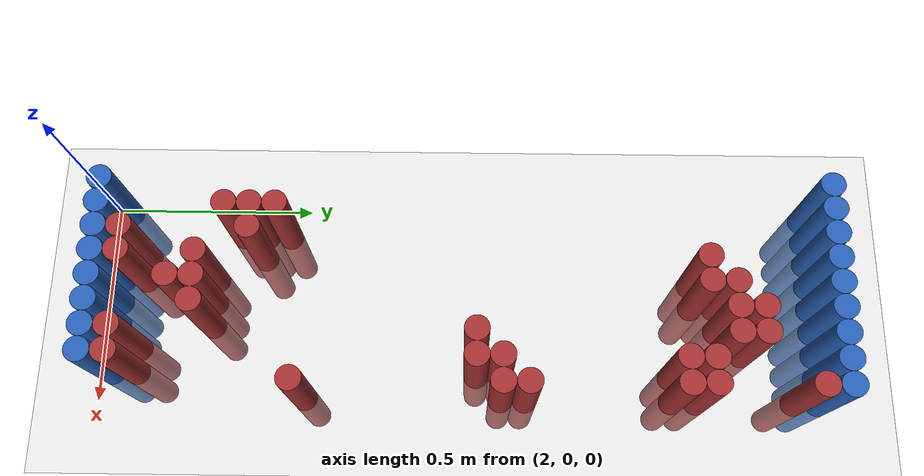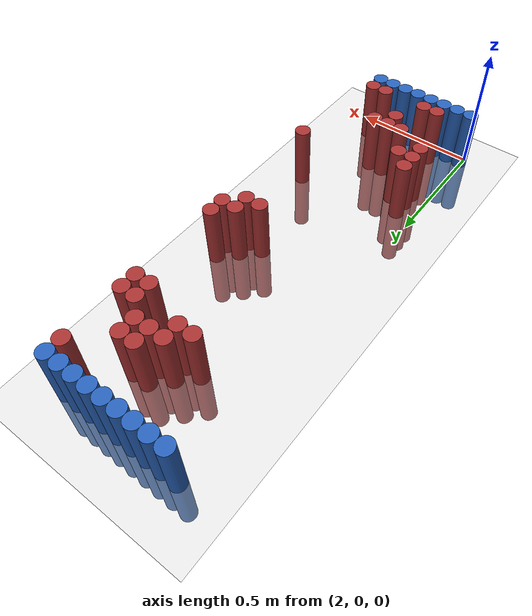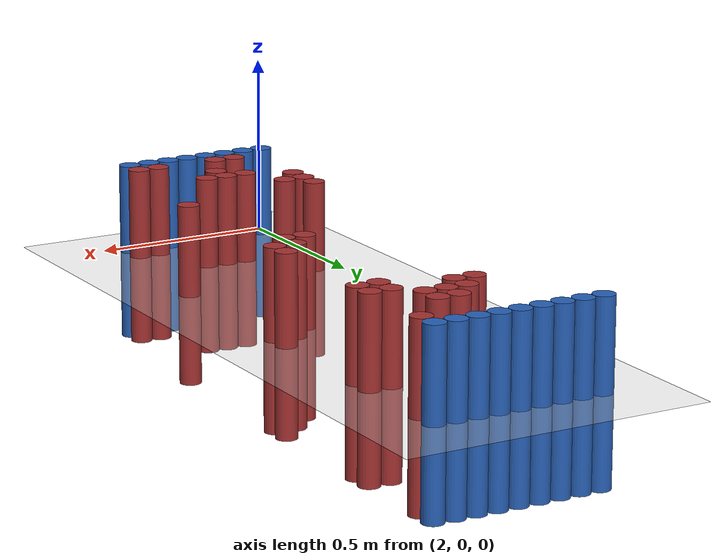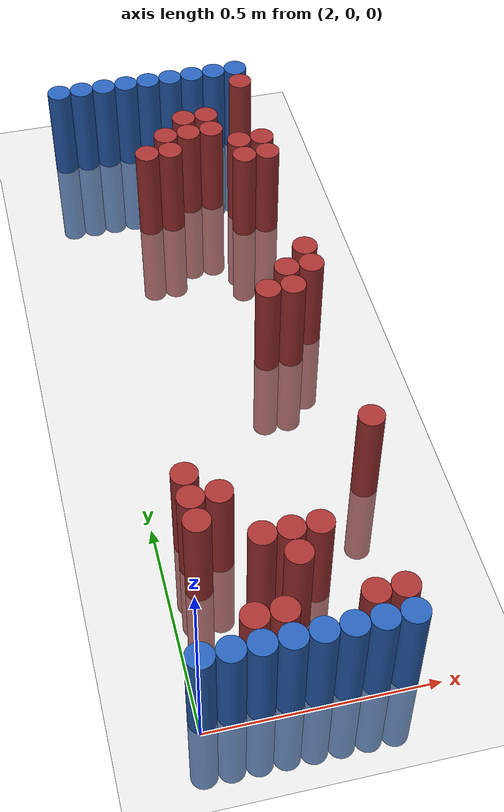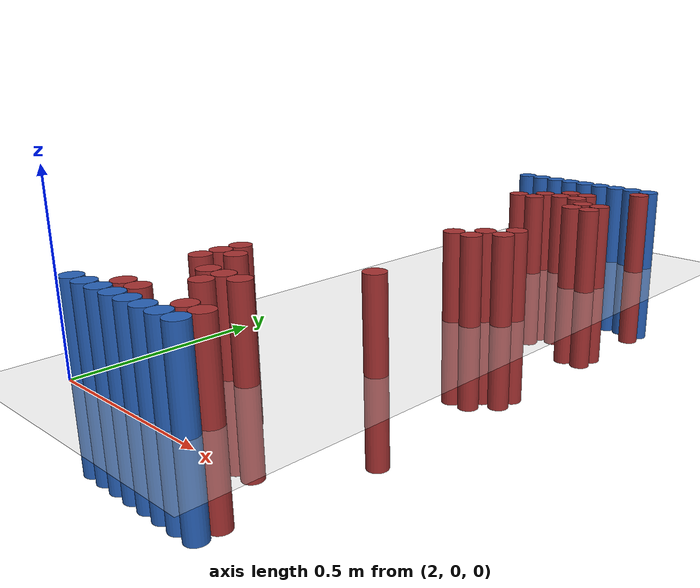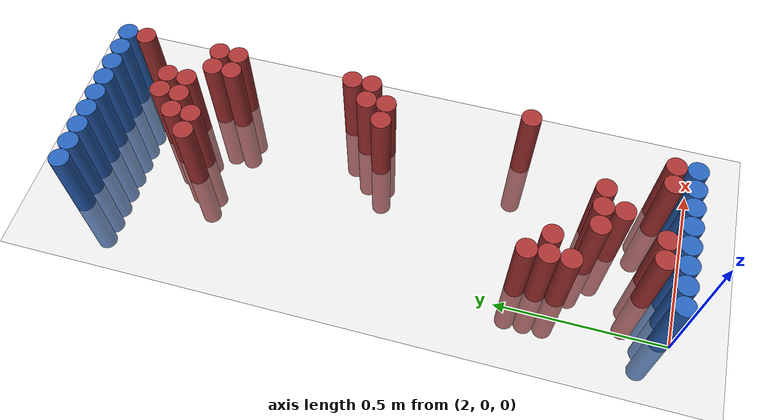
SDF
<sdf version="1.6">
 <world name="default">
  <model name="ground_plane">
   <static>1</static>
   <link name="link">
    <collision name="collision">
     <geometry><plane><normal>0 0 1</normal><size>100 100</size></plane></geometry>
     <surface><friction><ode><mu>100</mu><mu2>50</mu2></ode></friction></surface>
    </collision>
    <visual name="visual">
     <cast_shadows>0</cast_shadows>
     <geometry><plane><normal>0 0 1</normal><size>100 100</size></plane></geometry>
     <material>
      <script><uri>file://media/materials/scripts/gazebo.material</uri><name>Gazebo/Grey</name></script>
     </material>
    </visual>
   </link>
  </model>
  <model name="unit_cylinder_93">
   <static>1</static>
   <pose>2.010000 0.030000 0.000000 0.000000 0.000000 0.000000</pose>
   <link name="link">
    <inertial>
     <mass>1</mass>
     <inertia><ixx>0.145833</ixx><ixy>0</ixy><ixz>0</ixz><iyy>0.145833</iyy><iyz>0</iyz><izz>0.125</izz></inertia>
    </inertial>
    <collision name="collision">
     <geometry><cylinder><radius>0.030000</radius><length>0.5</length></cylinder></geometry>
    </collision>
    <visual name="visual">
     <geometry><cylinder><radius>0.030000</radius><length>0.5</length></cylinder></geometry>
     <material>
      <ambient>0.152000 0.379000 0.720000 1</ambient>
      <diffuse>0.152000 0.379000 0.720000 1</diffuse>
     </material>
     <material>
      <script><name>Gazebo/Grey</name><uri>file://media/materials/scripts/gazebo.material</uri></script>
     </material>
    </visual>
   </link>
  </model>
  <model name="unit_cylinder_94">
   <static>1</static>
   <pose>2.010000 1.770000 0.000000 0.000000 0.000000 0.000000</pose>
   <link name="link">
    <inertial>
     <mass>1</mass>
     <inertia><ixx>0.145833</ixx><ixy>0</ixy><ixz>0</ixz><iyy>0.145833</iyy><iyz>0</iyz><izz>0.125</izz></inertia>
    </inertial>
    <collision name="collision">
     <geometry><cylinder><radius>0.030000</radius><length>0.5</length></cylinder></geometry>
    </collision>
    <visual name="visual">
     <geometry><cylinder><radius>0.030000</radius><length>0.5</length></cylinder></geometry>
     <material>
      <ambient>0.152000 0.379000 0.720000 1</ambient>
      <diffuse>0.152000 0.379000 0.720000 1</diffuse>
     </material>
     <material>
      <script><name>Gazebo/Grey</name><uri>file://media/materials/scripts/gazebo.material</uri></script>
     </material>
    </visual>
   </link>
  </model>
  <model name="unit_cylinder_95">
   <static>1</static>
   <pose>2.070000 1.770000 0.000000 0.000000 0.000000 0.000000</pose>
   <link name="link">
    <inertial>
     <mass>1</mass>
     <inertia><ixx>0.145833</ixx><ixy>0</ixy><ixz>0</ixz><iyy>0.145833</iyy><iyz>0</iyz><izz>0.125</izz></inertia>
    </inertial>
    <collision name="collision">
     <geometry><cylinder><radius>0.030000</radius><length>0.5</length></cylinder></geometry>
    </collision>
    <visual name="visual">
     <geometry><cylinder><radius>0.030000</radius><length>0.5</length></cylinder></geometry>
     <material>
      <ambient>0.152000 0.379000 0.720000 1</ambient>
      <diffuse>0.152000 0.379000 0.720000 1</diffuse>
     </material>
     <material>
      <script><name>Gazebo/Grey</name><uri>file://media/materials/scripts/gazebo.material</uri></script>
     </material>
    </visual>
   </link>
  </model>
  <model name="unit_cylinder_96">
   <static>1</static>
   <pose>2.130000 1.770000 0.000000 0.000000 0.000000 0.000000</pose>
   <link name="link">
    <inertial>
     <mass>1</mass>
     <inertia><ixx>0.145833</ixx><ixy>0</ixy><ixz>0</ixz><iyy>0.145833</iyy><iyz>0</iyz><izz>0.125</izz></inertia>
    </inertial>
    <collision name="collision">
     <geometry><cylinder><radius>0.030000</radius><length>0.5</length></cylinder></geometry>
    </collision>
    <visual name="visual">
     <geometry><cylinder><radius>0.030000</radius><length>0.5</length></cylinder></geometry>
     <material>
      <ambient>0.152000 0.379000 0.720000 1</ambient>
      <diffuse>0.152000 0.379000 0.720000 1</diffuse>
     </material>
     <material>
      <script><name>Gazebo/Grey</name><uri>file://media/materials/scripts/gazebo.material</uri></script>
     </material>
    </visual>
   </link>
  </model>
  <model name="unit_cylinder_97">
   <static>1</static>
   <pose>2.190000 1.770000 0.000000 0.000000 0.000000 0.000000</pose>
   <link name="link">
    <inertial>
     <mass>1</mass>
     <inertia><ixx>0.145833</ixx><ixy>0</ixy><ixz>0</ixz><iyy>0.145833</iyy><iyz>0</iyz><izz>0.125</izz></inertia>
    </inertial>
    <collision name="collision">
     <geometry><cylinder><radius>0.030000</radius><length>0.5</length></cylinder></geometry>
    </collision>
    <visual name="visual">
     <geometry><cylinder><radius>0.030000</radius><length>0.5</length></cylinder></geometry>
     <material>
      <ambient>0.152000 0.379000 0.720000 1</ambient>
      <diffuse>0.152000 0.379000 0.720000 1</diffuse>
     </material>
     <material>
      <script><name>Gazebo/Grey</name><uri>file://media/materials/scripts/gazebo.material</uri></script>
     </material>
    </visual>
   </link>
  </model>
  <model name="unit_cylinder_98">
   <static>1</static>
   <pose>2.250000 1.770000 0.000000 0.000000 0.000000 0.000000</pose>
   <link name="link">
    <inertial>
     <mass>1</mass>
     <inertia><ixx>0.145833</ixx><ixy>0</ixy><ixz>0</ixz><iyy>0.145833</iyy><iyz>0</iyz><izz>0.125</izz></inertia>
    </inertial>
    <collision name="collision">
     <geometry><cylinder><radius>0.030000</radius><length>0.5</length></cylinder></geometry>
    </collision>
    <visual name="visual">
     <geometry><cylinder><radius>0.030000</radius><length>0.5</length></cylinder></geometry>
     <material>
      <ambient>0.152000 0.379000 0.720000 1</ambient>
      <diffuse>0.152000 0.379000 0.720000 1</diffuse>
     </material>
     <material>
      <script><name>Gazebo/Grey</name><uri>file://media/materials/scripts/gazebo.material</uri></script>
     </material>
    </visual>
   </link>
  </model>
  <model name="unit_cylinder_99">
   <static>1</static>
   <pose>2.310000 1.770000 0.000000 0.000000 0.000000 0.000000</pose>
   <link name="link">
    <inertial>
     <mass>1</mass>
     <inertia><ixx>0.145833</ixx><ixy>0</ixy><ixz>0</ixz><iyy>0.145833</iyy><iyz>0</iyz><izz>0.125</izz></inertia>
    </inertial>
    <collision name="collision">
     <geometry><cylinder><radius>0.030000</radius><length>0.5</length></cylinder></geometry>
    </collision>
    <visual name="visual">
     <geometry><cylinder><radius>0.030000</radius><length>0.5</length></cylinder></geometry>
     <material>
      <ambient>0.152000 0.379000 0.720000 1</ambient>
      <diffuse>0.152000 0.379000 0.720000 1</diffuse>
     </material>
     <material>
      <script><name>Gazebo/Grey</name><uri>file://media/materials/scripts/gazebo.material</uri></script>
     </material>
    </visual>
   </link>
  </model>
  <model name="unit_cylinder_100">
   <static>1</static>
   <pose>2.370000 1.770000 0.000000 0.000000 0.000000 0.000000</pose>
   <link name="link">
    <inertial>
     <mass>1</mass>
     <inertia><ixx>0.145833</ixx><ixy>0</ixy><ixz>0</ixz><iyy>0.145833</iyy><iyz>0</iyz><izz>0.125</izz></inertia>
    </inertial>
    <collision name="collision">
     <geometry><cylinder><radius>0.030000</radius><length>0.5</length></cylinder></geometry>
    </collision>
    <visual name="visual">
     <geometry><cylinder><radius>0.030000</radius><length>0.5</length></cylinder></geometry>
     <material>
      <ambient>0.152000 0.379000 0.720000 1</ambient>
      <diffuse>0.152000 0.379000 0.720000 1</diffuse>
     </material>
     <material>
      <script><name>Gazebo/Grey</name><uri>file://media/materials/scripts/gazebo.material</uri></script>
     </material>
    </visual>
   </link>
  </model>
  <model name="unit_cylinder_101">
   <static>1</static>
   <pose>2.430000 1.770000 0.000000 0.000000 0.000000 0.000000</pose>
   <link name="link">
    <inertial>
     <mass>1</mass>
     <inertia><ixx>0.145833</ixx><ixy>0</ixy><ixz>0</ixz><iyy>0.145833</iyy><iyz>0</iyz><izz>0.125</izz></inertia>
    </inertial>
    <collision name="collision">
     <geometry><cylinder><radius>0.030000</radius><length>0.5</length></cylinder></geometry>
    </collision>
    <visual name="visual">
     <geometry><cylinder><radius>0.030000</radius><length>0.5</length></cylinder></geometry>
     <material>
      <ambient>0.152000 0.379000 0.720000 1</ambient>
      <diffuse>0.152000 0.379000 0.720000 1</diffuse>
     </material>
     <material>
      <script><name>Gazebo/Grey</name><uri>file://media/materials/scripts/gazebo.material</uri></script>
     </material>
    </visual>
   </link>
  </model>
  <model name="unit_cylinder_102">
   <static>1</static>
   <pose>2.490000 1.770000 0.000000 0.000000 0.000000 0.000000</pose>
   <link name="link">
    <inertial>
     <mass>1</mass>
     <inertia><ixx>0.145833</ixx><ixy>0</ixy><ixz>0</ixz><iyy>0.145833</iyy><iyz>0</iyz><izz>0.125</izz></inertia>
    </inertial>
    <collision name="collision">
     <geometry><cylinder><radius>0.030000</radius><length>0.5</length></cylinder></geometry>
    </collision>
    <visual name="visual">
     <geometry><cylinder><radius>0.030000</radius><length>0.5</length></cylinder></geometry>
     <material>
      <ambient>0.152000 0.379000 0.720000 1</ambient>
      <diffuse>0.152000 0.379000 0.720000 1</diffuse>
     </material>
     <material>
      <script><name>Gazebo/Grey</name><uri>file://media/materials/scripts/gazebo.material</uri></script>
     </material>
    </visual>
   </link>
  </model>
  <model name="unit_cylinder_125">
   <static>1</static>
   <pose>2.490000 1.710000 0.000000 0.000000 0.000000 0.000000</pose>
   <link name="link">
    <inertial>
     <mass>1</mass>
     <inertia><ixx>0.145833</ixx><ixy>0</ixy><ixz>0</ixz><iyy>0.145833</iyy><iyz>0</iyz><izz>0.125</izz></inertia>
    </inertial>
    <collision name="collision">
     <geometry><cylinder><radius>0.030000</radius><length>0.5</length></cylinder></geometry>
    </collision>
    <visual name="visual">
     <geometry><cylinder><radius>0.030000</radius><length>0.5</length></cylinder></geometry>
     <material>
      <ambient>0.648000 0.192000 0.192000 1</ambient>
      <diffuse>0.648000 0.192000 0.192000 1</diffuse>
     </material>
     <material>
      <script><name>Gazebo/Grey</name><uri>file://media/materials/scripts/gazebo.material</uri></script>
     </material>
    </visual>
   </link>
  </model>
  <model name="unit_cylinder_136">
   <static>1</static>
   <pose>2.310000 1.590000 0.000000 0.000000 0.000000 0.000000</pose>
   <link name="link">
    <inertial>
     <mass>1</mass>
     <inertia><ixx>0.145833</ixx><ixy>0</ixy><ixz>0</ixz><iyy>0.145833</iyy><iyz>0</iyz><izz>0.125</izz></inertia>
    </inertial>
    <collision name="collision">
     <geometry><cylinder><radius>0.030000</radius><length>0.5</length></cylinder></geometry>
    </collision>
    <visual name="visual">
     <geometry><cylinder><radius>0.030000</radius><length>0.5</length></cylinder></geometry>
     <material>
      <ambient>0.648000 0.192000 0.192000 1</ambient>
      <diffuse>0.648000 0.192000 0.192000 1</diffuse>
     </material>
     <material>
      <script><name>Gazebo/Grey</name><uri>file://media/materials/scripts/gazebo.material</uri></script>
     </material>
    </visual>
   </link>
  </model>
  <model name="unit_cylinder_137">
   <static>1</static>
   <pose>2.370000 1.590000 0.000000 0.000000 0.000000 0.000000</pose>
   <link name="link">
    <inertial>
     <mass>1</mass>
     <inertia><ixx>0.145833</ixx><ixy>0</ixy><ixz>0</ixz><iyy>0.145833</iyy><iyz>0</iyz><izz>0.125</izz></inertia>
    </inertial>
    <collision name="collision">
     <geometry><cylinder><radius>0.030000</radius><length>0.5</length></cylinder></geometry>
    </collision>
    <visual name="visual">
     <geometry><cylinder><radius>0.030000</radius><length>0.5</length></cylinder></geometry>
     <material>
      <ambient>0.648000 0.192000 0.192000 1</ambient>
      <diffuse>0.648000 0.192000 0.192000 1</diffuse>
     </material>
     <material>
      <script><name>Gazebo/Grey</name><uri>file://media/materials/scripts/gazebo.material</uri></script>
     </material>
    </visual>
   </link>
  </model>
  <model name="unit_cylinder_138">
   <static>1</static>
   <pose>2.250000 1.530000 0.000000 0.000000 0.000000 0.000000</pose>
   <link name="link">
    <inertial>
     <mass>1</mass>
     <inertia><ixx>0.145833</ixx><ixy>0</ixy><ixz>0</ixz><iyy>0.145833</iyy><iyz>0</iyz><izz>0.125</izz></inertia>
    </inertial>
    <collision name="collision">
     <geometry><cylinder><radius>0.030000</radius><length>0.5</length></cylinder></geometry>
    </collision>
    <visual name="visual">
     <geometry><cylinder><radius>0.030000</radius><length>0.5</length></cylinder></geometry>
     <material>
      <ambient>0.648000 0.192000 0.192000 1</ambient>
      <diffuse>0.648000 0.192000 0.192000 1</diffuse>
     </material>
     <material>
      <script><name>Gazebo/Grey</name><uri>file://media/materials/scripts/gazebo.material</uri></script>
     </material>
    </visual>
   </link>
  </model>
  <model name="unit_cylinder_139">
   <static>1</static>
   <pose>2.310000 1.530000 0.000000 0.000000 0.000000 0.000000</pose>
   <link name="link">
    <inertial>
     <mass>1</mass>
     <inertia><ixx>0.145833</ixx><ixy>0</ixy><ixz>0</ixz><iyy>0.145833</iyy><iyz>0</iyz><izz>0.125</izz></inertia>
    </inertial>
    <collision name="collision">
     <geometry><cylinder><radius>0.030000</radius><length>0.5</length></cylinder></geometry>
    </collision>
    <visual name="visual">
     <geometry><cylinder><radius>0.030000</radius><length>0.5</length></cylinder></geometry>
     <material>
      <ambient>0.648000 0.192000 0.192000 1</ambient>
      <diffuse>0.648000 0.192000 0.192000 1</diffuse>
     </material>
     <material>
      <script><name>Gazebo/Grey</name><uri>file://media/materials/scripts/gazebo.material</uri></script>
     </material>
    </visual>
   </link>
  </model>
  <model name="unit_cylinder_140">
   <static>1</static>
   <pose>2.370000 1.530000 0.000000 0.000000 0.000000 0.000000</pose>
   <link name="link">
    <inertial>
     <mass>1</mass>
     <inertia><ixx>0.145833</ixx><ixy>0</ixy><ixz>0</ixz><iyy>0.145833</iyy><iyz>0</iyz><izz>0.125</izz></inertia>
    </inertial>
    <collision name="collision">
     <geometry><cylinder><radius>0.030000</radius><length>0.5</length></cylinder></geometry>
    </collision>
    <visual name="visual">
     <geometry><cylinder><radius>0.030000</radius><length>0.5</length></cylinder></geometry>
     <material>
      <ambient>0.648000 0.192000 0.192000 1</ambient>
      <diffuse>0.648000 0.192000 0.192000 1</diffuse>
     </material>
     <material>
      <script><name>Gazebo/Grey</name><uri>file://media/materials/scripts/gazebo.material</uri></script>
     </material>
    </visual>
   </link>
  </model>
  <model name="unit_cylinder_144">
   <static>1</static>
   <pose>2.190000 1.470000 0.000000 0.000000 0.000000 0.000000</pose>
   <link name="link">
    <inertial>
     <mass>1</mass>
     <inertia><ixx>0.145833</ixx><ixy>0</ixy><ixz>0</ixz><iyy>0.145833</iyy><iyz>0</iyz><izz>0.125</izz></inertia>
    </inertial>
    <collision name="collision">
     <geometry><cylinder><radius>0.030000</radius><length>0.5</length></cylinder></geometry>
    </collision>
    <visual name="visual">
     <geometry><cylinder><radius>0.030000</radius><length>0.5</length></cylinder></geometry>
     <material>
      <ambient>0.648000 0.192000 0.192000 1</ambient>
      <diffuse>0.648000 0.192000 0.192000 1</diffuse>
     </material>
     <material>
      <script><name>Gazebo/Grey</name><uri>file://media/materials/scripts/gazebo.material</uri></script>
     </material>
    </visual>
   </link>
  </model>
  <model name="unit_cylinder_145">
   <static>1</static>
   <pose>2.250000 1.470000 0.000000 0.000000 0.000000 0.000000</pose>
   <link name="link">
    <inertial>
     <mass>1</mass>
     <inertia><ixx>0.145833</ixx><ixy>0</ixy><ixz>0</ixz><iyy>0.145833</iyy><iyz>0</iyz><izz>0.125</izz></inertia>
    </inertial>
    <collision name="collision">
     <geometry><cylinder><radius>0.030000</radius><length>0.5</length></cylinder></geometry>
    </collision>
    <visual name="visual">
     <geometry><cylinder><radius>0.030000</radius><length>0.5</length></cylinder></geometry>
     <material>
      <ambient>0.648000 0.192000 0.192000 1</ambient>
      <diffuse>0.648000 0.192000 0.192000 1</diffuse>
     </material>
     <material>
      <script><name>Gazebo/Grey</name><uri>file://media/materials/scripts/gazebo.material</uri></script>
     </material>
    </visual>
   </link>
  </model>
  <model name="unit_cylinder_146">
   <static>1</static>
   <pose>2.430000 1.470000 0.000000 0.000000 0.000000 0.000000</pose>
   <link name="link">
    <inertial>
     <mass>1</mass>
     <inertia><ixx>0.145833</ixx><ixy>0</ixy><ixz>0</ixz><iyy>0.145833</iyy><iyz>0</iyz><izz>0.125</izz></inertia>
    </inertial>
    <collision name="collision">
     <geometry><cylinder><radius>0.030000</radius><length>0.5</length></cylinder></geometry>
    </collision>
    <visual name="visual">
     <geometry><cylinder><radius>0.030000</radius><length>0.5</length></cylinder></geometry>
     <material>
      <ambient>0.648000 0.192000 0.192000 1</ambient>
      <diffuse>0.648000 0.192000 0.192000 1</diffuse>
     </material>
     <material>
      <script><name>Gazebo/Grey</name><uri>file://media/materials/scripts/gazebo.material</uri></script>
     </material>
    </visual>
   </link>
  </model>
  <model name="unit_cylinder_147">
   <static>1</static>
   <pose>2.490000 1.470000 0.000000 0.000000 0.000000 0.000000</pose>
   <link name="link">
    <inertial>
     <mass>1</mass>
     <inertia><ixx>0.145833</ixx><ixy>0</ixy><ixz>0</ixz><iyy>0.145833</iyy><iyz>0</iyz><izz>0.125</izz></inertia>
    </inertial>
    <collision name="collision">
     <geometry><cylinder><radius>0.030000</radius><length>0.5</length></cylinder></geometry>
    </collision>
    <visual name="visual">
     <geometry><cylinder><radius>0.030000</radius><length>0.5</length></cylinder></geometry>
     <material>
      <ambient>0.648000 0.192000 0.192000 1</ambient>
      <diffuse>0.648000 0.192000 0.192000 1</diffuse>
     </material>
     <material>
      <script><name>Gazebo/Grey</name><uri>file://media/materials/scripts/gazebo.material</uri></script>
     </material>
    </visual>
   </link>
  </model>
  <model name="unit_cylinder_158">
   <static>1</static>
   <pose>2.430000 1.410000 0.000000 0.000000 0.000000 0.000000</pose>
   <link name="link">
    <inertial>
     <mass>1</mass>
     <inertia><ixx>0.145833</ixx><ixy>0</ixy><ixz>0</ixz><iyy>0.145833</iyy><iyz>0</iyz><izz>0.125</izz></inertia>
    </inertial>
    <collision name="collision">
     <geometry><cylinder><radius>0.030000</radius><length>0.5</length></cylinder></geometry>
    </collision>
    <visual name="visual">
     <geometry><cylinder><radius>0.030000</radius><length>0.5</length></cylinder></geometry>
     <material>
      <ambient>0.648000 0.192000 0.192000 1</ambient>
      <diffuse>0.648000 0.192000 0.192000 1</diffuse>
     </material>
     <material>
      <script><name>Gazebo/Grey</name><uri>file://media/materials/scripts/gazebo.material</uri></script>
     </material>
    </visual>
   </link>
  </model>
  <model name="unit_cylinder_159">
   <static>1</static>
   <pose>2.490000 1.410000 0.000000 0.000000 0.000000 0.000000</pose>
   <link name="link">
    <inertial>
     <mass>1</mass>
     <inertia><ixx>0.145833</ixx><ixy>0</ixy><ixz>0</ixz><iyy>0.145833</iyy><iyz>0</iyz><izz>0.125</izz></inertia>
    </inertial>
    <collision name="collision">
     <geometry><cylinder><radius>0.030000</radius><length>0.5</length></cylinder></geometry>
    </collision>
    <visual name="visual">
     <geometry><cylinder><radius>0.030000</radius><length>0.5</length></cylinder></geometry>
     <material>
      <ambient>0.648000 0.192000 0.192000 1</ambient>
      <diffuse>0.648000 0.192000 0.192000 1</diffuse>
     </material>
     <material>
      <script><name>Gazebo/Grey</name><uri>file://media/materials/scripts/gazebo.material</uri></script>
     </material>
    </visual>
   </link>
  </model>
  <model name="unit_cylinder_182">
   <static>1</static>
   <pose>2.490000 1.050000 0.000000 0.000000 0.000000 0.000000</pose>
   <link name="link">
    <inertial>
     <mass>1</mass>
     <inertia><ixx>0.145833</ixx><ixy>0</ixy><ixz>0</ixz><iyy>0.145833</iyy><iyz>0</iyz><izz>0.125</izz></inertia>
    </inertial>
    <collision name="collision">
     <geometry><cylinder><radius>0.030000</radius><length>0.5</length></cylinder></geometry>
    </collision>
    <visual name="visual">
     <geometry><cylinder><radius>0.030000</radius><length>0.5</length></cylinder></geometry>
     <material>
      <ambient>0.648000 0.192000 0.192000 1</ambient>
      <diffuse>0.648000 0.192000 0.192000 1</diffuse>
     </material>
     <material>
      <script><name>Gazebo/Grey</name><uri>file://media/materials/scripts/gazebo.material</uri></script>
     </material>
    </visual>
   </link>
  </model>
  <model name="unit_cylinder_183">
   <static>1</static>
   <pose>2.430000 0.990000 0.000000 0.000000 0.000000 0.000000</pose>
   <link name="link">
    <inertial>
     <mass>1</mass>
     <inertia><ixx>0.145833</ixx><ixy>0</ixy><ixz>0</ixz><iyy>0.145833</iyy><iyz>0</iyz><izz>0.125</izz></inertia>
    </inertial>
    <collision name="collision">
     <geometry><cylinder><radius>0.030000</radius><length>0.5</length></cylinder></geometry>
    </collision>
    <visual name="visual">
     <geometry><cylinder><radius>0.030000</radius><length>0.5</length></cylinder></geometry>
     <material>
      <ambient>0.648000 0.192000 0.192000 1</ambient>
      <diffuse>0.648000 0.192000 0.192000 1</diffuse>
     </material>
     <material>
      <script><name>Gazebo/Grey</name><uri>file://media/materials/scripts/gazebo.material</uri></script>
     </material>
    </visual>
   </link>
  </model>
  <model name="unit_cylinder_184">
   <static>1</static>
   <pose>2.490000 0.990000 0.000000 0.000000 0.000000 0.000000</pose>
   <link name="link">
    <inertial>
     <mass>1</mass>
     <inertia><ixx>0.145833</ixx><ixy>0</ixy><ixz>0</ixz><iyy>0.145833</iyy><iyz>0</iyz><izz>0.125</izz></inertia>
    </inertial>
    <collision name="collision">
     <geometry><cylinder><radius>0.030000</radius><length>0.5</length></cylinder></geometry>
    </collision>
    <visual name="visual">
     <geometry><cylinder><radius>0.030000</radius><length>0.5</length></cylinder></geometry>
     <material>
      <ambient>0.648000 0.192000 0.192000 1</ambient>
      <diffuse>0.648000 0.192000 0.192000 1</diffuse>
     </material>
     <material>
      <script><name>Gazebo/Grey</name><uri>file://media/materials/scripts/gazebo.material</uri></script>
     </material>
    </visual>
   </link>
  </model>
  <model name="unit_cylinder_186">
   <static>1</static>
   <pose>2.370000 0.930000 0.000000 0.000000 0.000000 0.000000</pose>
   <link name="link">
    <inertial>
     <mass>1</mass>
     <inertia><ixx>0.145833</ixx><ixy>0</ixy><ixz>0</ixz><iyy>0.145833</iyy><iyz>0</iyz><izz>0.125</izz></inertia>
    </inertial>
    <collision name="collision">
     <geometry><cylinder><radius>0.030000</radius><length>0.5</length></cylinder></geometry>
    </collision>
    <visual name="visual">
     <geometry><cylinder><radius>0.030000</radius><length>0.5</length></cylinder></geometry>
     <material>
      <ambient>0.648000 0.192000 0.192000 1</ambient>
      <diffuse>0.648000 0.192000 0.192000 1</diffuse>
     </material>
     <material>
      <script><name>Gazebo/Grey</name><uri>file://media/materials/scripts/gazebo.material</uri></script>
     </material>
    </visual>
   </link>
  </model>
  <model name="unit_cylinder_187">
   <static>1</static>
   <pose>2.430000 0.930000 0.000000 0.000000 0.000000 0.000000</pose>
   <link name="link">
    <inertial>
     <mass>1</mass>
     <inertia><ixx>0.145833</ixx><ixy>0</ixy><ixz>0</ixz><iyy>0.145833</iyy><iyz>0</iyz><izz>0.125</izz></inertia>
    </inertial>
    <collision name="collision">
     <geometry><cylinder><radius>0.030000</radius><length>0.5</length></cylinder></geometry>
    </collision>
    <visual name="visual">
     <geometry><cylinder><radius>0.030000</radius><length>0.5</length></cylinder></geometry>
     <material>
      <ambient>0.648000 0.192000 0.192000 1</ambient>
      <diffuse>0.648000 0.192000 0.192000 1</diffuse>
     </material>
     <material>
      <script><name>Gazebo/Grey</name><uri>file://media/materials/scripts/gazebo.material</uri></script>
     </material>
    </visual>
   </link>
  </model>
  <model name="unit_cylinder_193">
   <static>1</static>
   <pose>2.490000 0.510000 0.000000 0.000000 0.000000 0.000000</pose>
   <link name="link">
    <inertial>
     <mass>1</mass>
     <inertia><ixx>0.145833</ixx><ixy>0</ixy><ixz>0</ixz><iyy>0.145833</iyy><iyz>0</iyz><izz>0.125</izz></inertia>
    </inertial>
    <collision name="collision">
     <geometry><cylinder><radius>0.030000</radius><length>0.5</length></cylinder></geometry>
    </collision>
    <visual name="visual">
     <geometry><cylinder><radius>0.030000</radius><length>0.5</length></cylinder></geometry>
     <material>
      <ambient>0.648000 0.192000 0.192000 1</ambient>
      <diffuse>0.648000 0.192000 0.192000 1</diffuse>
     </material>
     <material>
      <script><name>Gazebo/Grey</name><uri>file://media/materials/scripts/gazebo.material</uri></script>
     </material>
    </visual>
   </link>
  </model>
  <model name="unit_cylinder_195">
   <static>1</static>
   <pose>2.070000 0.450000 0.000000 0.000000 0.000000 0.000000</pose>
   <link name="link">
    <inertial>
     <mass>1</mass>
     <inertia><ixx>0.145833</ixx><ixy>0</ixy><ixz>0</ixz><iyy>0.145833</iyy><iyz>0</iyz><izz>0.125</izz></inertia>
    </inertial>
    <collision name="collision">
     <geometry><cylinder><radius>0.030000</radius><length>0.5</length></cylinder></geometry>
    </collision>
    <visual name="visual">
     <geometry><cylinder><radius>0.030000</radius><length>0.5</length></cylinder></geometry>
     <material>
      <ambient>0.648000 0.192000 0.192000 1</ambient>
      <diffuse>0.648000 0.192000 0.192000 1</diffuse>
     </material>
     <material>
      <script><name>Gazebo/Grey</name><uri>file://media/materials/scripts/gazebo.material</uri></script>
     </material>
    </visual>
   </link>
  </model>
  <model name="unit_cylinder_198">
   <static>1</static>
   <pose>2.070000 0.390000 0.000000 0.000000 0.000000 0.000000</pose>
   <link name="link">
    <inertial>
     <mass>1</mass>
     <inertia><ixx>0.145833</ixx><ixy>0</ixy><ixz>0</ixz><iyy>0.145833</iyy><iyz>0</iyz><izz>0.125</izz></inertia>
    </inertial>
    <collision name="collision">
     <geometry><cylinder><radius>0.030000</radius><length>0.5</length></cylinder></geometry>
    </collision>
    <visual name="visual">
     <geometry><cylinder><radius>0.030000</radius><length>0.5</length></cylinder></geometry>
     <material>
      <ambient>0.648000 0.192000 0.192000 1</ambient>
      <diffuse>0.648000 0.192000 0.192000 1</diffuse>
     </material>
     <material>
      <script><name>Gazebo/Grey</name><uri>file://media/materials/scripts/gazebo.material</uri></script>
     </material>
    </visual>
   </link>
  </model>
  <model name="unit_cylinder_199">
   <static>1</static>
   <pose>2.130000 0.390000 0.000000 0.000000 0.000000 0.000000</pose>
   <link name="link">
    <inertial>
     <mass>1</mass>
     <inertia><ixx>0.145833</ixx><ixy>0</ixy><ixz>0</ixz><iyy>0.145833</iyy><iyz>0</iyz><izz>0.125</izz></inertia>
    </inertial>
    <collision name="collision">
     <geometry><cylinder><radius>0.030000</radius><length>0.5</length></cylinder></geometry>
    </collision>
    <visual name="visual">
     <geometry><cylinder><radius>0.030000</radius><length>0.5</length></cylinder></geometry>
     <material>
      <ambient>0.648000 0.192000 0.192000 1</ambient>
      <diffuse>0.648000 0.192000 0.192000 1</diffuse>
     </material>
     <material>
      <script><name>Gazebo/Grey</name><uri>file://media/materials/scripts/gazebo.material</uri></script>
     </material>
    </visual>
   </link>
  </model>
  <model name="unit_cylinder_202">
   <static>1</static>
   <pose>2.070000 0.330000 0.000000 0.000000 0.000000 0.000000</pose>
   <link name="link">
    <inertial>
     <mass>1</mass>
     <inertia><ixx>0.145833</ixx><ixy>0</ixy><ixz>0</ixz><iyy>0.145833</iyy><iyz>0</iyz><izz>0.125</izz></inertia>
    </inertial>
    <collision name="collision">
     <geometry><cylinder><radius>0.030000</radius><length>0.5</length></cylinder></geometry>
    </collision>
    <visual name="visual">
     <geometry><cylinder><radius>0.030000</radius><length>0.5</length></cylinder></geometry>
     <material>
      <ambient>0.648000 0.192000 0.192000 1</ambient>
      <diffuse>0.648000 0.192000 0.192000 1</diffuse>
     </material>
     <material>
      <script><name>Gazebo/Grey</name><uri>file://media/materials/scripts/gazebo.material</uri></script>
     </material>
    </visual>
   </link>
  </model>
  <model name="unit_cylinder_205">
   <static>1</static>
   <pose>2.190000 0.270000 0.000000 0.000000 0.000000 0.000000</pose>
   <link name="link">
    <inertial>
     <mass>1</mass>
     <inertia><ixx>0.145833</ixx><ixy>0</ixy><ixz>0</ixz><iyy>0.145833</iyy><iyz>0</iyz><izz>0.125</izz></inertia>
    </inertial>
    <collision name="collision">
     <geometry><cylinder><radius>0.030000</radius><length>0.5</length></cylinder></geometry>
    </collision>
    <visual name="visual">
     <geometry><cylinder><radius>0.030000</radius><length>0.5</length></cylinder></geometry>
     <material>
      <ambient>0.648000 0.192000 0.192000 1</ambient>
      <diffuse>0.648000 0.192000 0.192000 1</diffuse>
     </material>
     <material>
      <script><name>Gazebo/Grey</name><uri>file://media/materials/scripts/gazebo.material</uri></script>
     </material>
    </visual>
   </link>
  </model>
  <model name="unit_cylinder_206">
   <static>1</static>
   <pose>2.250000 0.270000 0.000000 0.000000 0.000000 0.000000</pose>
   <link name="link">
    <inertial>
     <mass>1</mass>
     <inertia><ixx>0.145833</ixx><ixy>0</ixy><ixz>0</ixz><iyy>0.145833</iyy><iyz>0</iyz><izz>0.125</izz></inertia>
    </inertial>
    <collision name="collision">
     <geometry><cylinder><radius>0.030000</radius><length>0.5</length></cylinder></geometry>
    </collision>
    <visual name="visual">
     <geometry><cylinder><radius>0.030000</radius><length>0.5</length></cylinder></geometry>
     <material>
      <ambient>0.648000 0.192000 0.192000 1</ambient>
      <diffuse>0.648000 0.192000 0.192000 1</diffuse>
     </material>
     <material>
      <script><name>Gazebo/Grey</name><uri>file://media/materials/scripts/gazebo.material</uri></script>
     </material>
    </visual>
   </link>
  </model>
  <model name="unit_cylinder_207">
   <static>1</static>
   <pose>2.310000 0.270000 0.000000 0.000000 0.000000 0.000000</pose>
   <link name="link">
    <inertial>
     <mass>1</mass>
     <inertia><ixx>0.145833</ixx><ixy>0</ixy><ixz>0</ixz><iyy>0.145833</iyy><iyz>0</iyz><izz>0.125</izz></inertia>
    </inertial>
    <collision name="collision">
     <geometry><cylinder><radius>0.030000</radius><length>0.5</length></cylinder></geometry>
    </collision>
    <visual name="visual">
     <geometry><cylinder><radius>0.030000</radius><length>0.5</length></cylinder></geometry>
     <material>
      <ambient>0.648000 0.192000 0.192000 1</ambient>
      <diffuse>0.648000 0.192000 0.192000 1</diffuse>
     </material>
     <material>
      <script><name>Gazebo/Grey</name><uri>file://media/materials/scripts/gazebo.material</uri></script>
     </material>
    </visual>
   </link>
  </model>
  <model name="unit_cylinder_211">
   <static>1</static>
   <pose>2.250000 0.210000 0.000000 0.000000 0.000000 0.000000</pose>
   <link name="link">
    <inertial>
     <mass>1</mass>
     <inertia><ixx>0.145833</ixx><ixy>0</ixy><ixz>0</ixz><iyy>0.145833</iyy><iyz>0</iyz><izz>0.125</izz></inertia>
    </inertial>
    <collision name="collision">
     <geometry><cylinder><radius>0.030000</radius><length>0.5</length></cylinder></geometry>
    </collision>
    <visual name="visual">
     <geometry><cylinder><radius>0.030000</radius><length>0.5</length></cylinder></geometry>
     <material>
      <ambient>0.648000 0.192000 0.192000 1</ambient>
      <diffuse>0.648000 0.192000 0.192000 1</diffuse>
     </material>
     <material>
      <script><name>Gazebo/Grey</name><uri>file://media/materials/scripts/gazebo.material</uri></script>
     </material>
    </visual>
   </link>
  </model>
  <model name="unit_cylinder_227">
   <static>1</static>
   <pose>2.130000 0.090000 0.000000 0.000000 0.000000 0.000000</pose>
   <link name="link">
    <inertial>
     <mass>1</mass>
     <inertia><ixx>0.145833</ixx><ixy>0</ixy><ixz>0</ixz><iyy>0.145833</iyy><iyz>0</iyz><izz>0.125</izz></inertia>
    </inertial>
    <collision name="collision">
     <geometry><cylinder><radius>0.030000</radius><length>0.5</length></cylinder></geometry>
    </collision>
    <visual name="visual">
     <geometry><cylinder><radius>0.030000</radius><length>0.5</length></cylinder></geometry>
     <material>
      <ambient>0.648000 0.192000 0.192000 1</ambient>
      <diffuse>0.648000 0.192000 0.192000 1</diffuse>
     </material>
     <material>
      <script><name>Gazebo/Grey</name><uri>file://media/materials/scripts/gazebo.material</uri></script>
     </material>
    </visual>
   </link>
  </model>
  <model name="unit_cylinder_228">
   <static>1</static>
   <pose>2.190000 0.090000 0.000000 0.000000 0.000000 0.000000</pose>
   <link name="link">
    <inertial>
     <mass>1</mass>
     <inertia><ixx>0.145833</ixx><ixy>0</ixy><ixz>0</ixz><iyy>0.145833</iyy><iyz>0</iyz><izz>0.125</izz></inertia>
    </inertial>
    <collision name="collision">
     <geometry><cylinder><radius>0.030000</radius><length>0.5</length></cylinder></geometry>
    </collision>
    <visual name="visual">
     <geometry><cylinder><radius>0.030000</radius><length>0.5</length></cylinder></geometry>
     <material>
      <ambient>0.648000 0.192000 0.192000 1</ambient>
      <diffuse>0.648000 0.192000 0.192000 1</diffuse>
     </material>
     <material>
      <script><name>Gazebo/Grey</name><uri>file://media/materials/scripts/gazebo.material</uri></script>
     </material>
    </visual>
   </link>
  </model>
  <model name="unit_cylinder_229">
   <static>1</static>
   <pose>2.370000 0.090000 0.000000 0.000000 0.000000 0.000000</pose>
   <link name="link">
    <inertial>
     <mass>1</mass>
     <inertia><ixx>0.145833</ixx><ixy>0</ixy><ixz>0</ixz><iyy>0.145833</iyy><iyz>0</iyz><izz>0.125</izz></inertia>
    </inertial>
    <collision name="collision">
     <geometry><cylinder><radius>0.030000</radius><length>0.5</length></cylinder></geometry>
    </collision>
    <visual name="visual">
     <geometry><cylinder><radius>0.030000</radius><length>0.5</length></cylinder></geometry>
     <material>
      <ambient>0.648000 0.192000 0.192000 1</ambient>
      <diffuse>0.648000 0.192000 0.192000 1</diffuse>
     </material>
     <material>
      <script><name>Gazebo/Grey</name><uri>file://media/materials/scripts/gazebo.material</uri></script>
     </material>
    </visual>
   </link>
  </model>
  <model name="unit_cylinder_230">
   <static>1</static>
   <pose>2.430000 0.090000 0.000000 0.000000 0.000000 0.000000</pose>
   <link name="link">
    <inertial>
     <mass>1</mass>
     <inertia><ixx>0.145833</ixx><ixy>0</ixy><ixz>0</ixz><iyy>0.145833</iyy><iyz>0</iyz><izz>0.125</izz></inertia>
    </inertial>
    <collision name="collision">
     <geometry><cylinder><radius>0.030000</radius><length>0.5</length></cylinder></geometry>
    </collision>
    <visual name="visual">
     <geometry><cylinder><radius>0.030000</radius><length>0.5</length></cylinder></geometry>
     <material>
      <ambient>0.648000 0.192000 0.192000 1</ambient>
      <diffuse>0.648000 0.192000 0.192000 1</diffuse>
     </material>
     <material>
      <script><name>Gazebo/Grey</name><uri>file://media/materials/scripts/gazebo.material</uri></script>
     </material>
    </visual>
   </link>
  </model>
  <model name="unit_cylinder_250">
   <static>1</static>
   <pose>2.070000 0.030000 0.000000 0.000000 0.000000 0.000000</pose>
   <link name="link">
    <inertial>
     <mass>1</mass>
     <inertia><ixx>0.145833</ixx><ixy>0</ixy><ixz>0</ixz><iyy>0.145833</iyy><iyz>0</iyz><izz>0.125</izz></inertia>
    </inertial>
    <collision name="collision">
     <geometry><cylinder><radius>0.030000</radius><length>0.5</length></cylinder></geometry>
    </collision>
    <visual name="visual">
     <geometry><cylinder><radius>0.030000</radius><length>0.5</length></cylinder></geometry>
     <material>
      <ambient>0.152000 0.379000 0.720000 1</ambient>
      <diffuse>0.152000 0.379000 0.720000 1</diffuse>
     </material>
     <material>
      <script><name>Gazebo/Grey</name><uri>file://media/materials/scripts/gazebo.material</uri></script>
     </material>
    </visual>
   </link>
  </model>
  <model name="unit_cylinder_251">
   <static>1</static>
   <pose>2.130000 0.030000 0.000000 0.000000 0.000000 0.000000</pose>
   <link name="link">
    <inertial>
     <mass>1</mass>
     <inertia><ixx>0.145833</ixx><ixy>0</ixy><ixz>0</ixz><iyy>0.145833</iyy><iyz>0</iyz><izz>0.125</izz></inertia>
    </inertial>
    <collision name="collision">
     <geometry><cylinder><radius>0.030000</radius><length>0.5</length></cylinder></geometry>
    </collision>
    <visual name="visual">
     <geometry><cylinder><radius>0.030000</radius><length>0.5</length></cylinder></geometry>
     <material>
      <ambient>0.152000 0.379000 0.720000 1</ambient>
      <diffuse>0.152000 0.379000 0.720000 1</diffuse>
     </material>
     <material>
      <script><name>Gazebo/Grey</name><uri>file://media/materials/scripts/gazebo.material</uri></script>
     </material>
    </visual>
   </link>
  </model>
  <model name="unit_cylinder_252">
   <static>1</static>
   <pose>2.190000 0.030000 0.000000 0.000000 0.000000 0.000000</pose>
   <link name="link">
    <inertial>
     <mass>1</mass>
     <inertia><ixx>0.145833</ixx><ixy>0</ixy><ixz>0</ixz><iyy>0.145833</iyy><iyz>0</iyz><izz>0.125</izz></inertia>
    </inertial>
    <collision name="collision">
     <geometry><cylinder><radius>0.030000</radius><length>0.5</length></cylinder></geometry>
    </collision>
    <visual name="visual">
     <geometry><cylinder><radius>0.030000</radius><length>0.5</length></cylinder></geometry>
     <material>
      <ambient>0.152000 0.379000 0.720000 1</ambient>
      <diffuse>0.152000 0.379000 0.720000 1</diffuse>
     </material>
     <material>
      <script><name>Gazebo/Grey</name><uri>file://media/materials/scripts/gazebo.material</uri></script>
     </material>
    </visual>
   </link>
  </model>
  <model name="unit_cylinder_253">
   <static>1</static>
   <pose>2.250000 0.030000 0.000000 0.000000 0.000000 0.000000</pose>
   <link name="link">
    <inertial>
     <mass>1</mass>
     <inertia><ixx>0.145833</ixx><ixy>0</ixy><ixz>0</ixz><iyy>0.145833</iyy><iyz>0</iyz><izz>0.125</izz></inertia>
    </inertial>
    <collision name="collision">
     <geometry><cylinder><radius>0.030000</radius><length>0.5</length></cylinder></geometry>
    </collision>
    <visual name="visual">
     <geometry><cylinder><radius>0.030000</radius><length>0.5</length></cylinder></geometry>
     <material>
      <ambient>0.152000 0.379000 0.720000 1</ambient>
      <diffuse>0.152000 0.379000 0.720000 1</diffuse>
     </material>
     <material>
      <script><name>Gazebo/Grey</name><uri>file://media/materials/scripts/gazebo.material</uri></script>
     </material>
    </visual>
   </link>
  </model>
  <model name="unit_cylinder_254">
   <static>1</static>
   <pose>2.310000 0.030000 0.000000 0.000000 0.000000 0.000000</pose>
   <link name="link">
    <inertial>
     <mass>1</mass>
     <inertia><ixx>0.145833</ixx><ixy>0</ixy><ixz>0</ixz><iyy>0.145833</iyy><iyz>0</iyz><izz>0.125</izz></inertia>
    </inertial>
    <collision name="collision">
     <geometry><cylinder><radius>0.030000</radius><length>0.5</length></cylinder></geometry>
    </collision>
    <visual name="visual">
     <geometry><cylinder><radius>0.030000</radius><length>0.5</length></cylinder></geometry>
     <material>
      <ambient>0.152000 0.379000 0.720000 1</ambient>
      <diffuse>0.152000 0.379000 0.720000 1</diffuse>
     </material>
     <material>
      <script><name>Gazebo/Grey</name><uri>file://media/materials/scripts/gazebo.material</uri></script>
     </material>
    </visual>
   </link>
  </model>
  <model name="unit_cylinder_255">
   <static>1</static>
   <pose>2.370000 0.030000 0.000000 0.000000 0.000000 0.000000</pose>
   <link name="link">
    <inertial>
     <mass>1</mass>
     <inertia><ixx>0.145833</ixx><ixy>0</ixy><ixz>0</ixz><iyy>0.145833</iyy><iyz>0</iyz><izz>0.125</izz></inertia>
    </inertial>
    <collision name="collision">
     <geometry><cylinder><radius>0.030000</radius><length>0.5</length></cylinder></geometry>
    </collision>
    <visual name="visual">
     <geometry><cylinder><radius>0.030000</radius><length>0.5</length></cylinder></geometry>
     <material>
      <ambient>0.152000 0.379000 0.720000 1</ambient>
      <diffuse>0.152000 0.379000 0.720000 1</diffuse>
     </material>
     <material>
      <script><name>Gazebo/Grey</name><uri>file://media/materials/scripts/gazebo.material</uri></script>
     </material>
    </visual>
   </link>
  </model>
  <model name="unit_cylinder_256">
   <static>1</static>
   <pose>2.430000 0.030000 0.000000 0.000000 0.000000 0.000000</pose>
   <link name="link">
    <inertial>
     <mass>1</mass>
     <inertia><ixx>0.145833</ixx><ixy>0</ixy><ixz>0</ixz><iyy>0.145833</iyy><iyz>0</iyz><izz>0.125</izz></inertia>
    </inertial>
    <collision name="collision">
     <geometry><cylinder><radius>0.030000</radius><length>0.5</length></cylinder></geometry>
    </collision>
    <visual name="visual">
     <geometry><cylinder><radius>0.030000</radius><length>0.5</length></cylinder></geometry>
     <material>
      <ambient>0.152000 0.379000 0.720000 1</ambient>
      <diffuse>0.152000 0.379000 0.720000 1</diffuse>
     </material>
     <material>
      <script><name>Gazebo/Grey</name><uri>file://media/materials/scripts/gazebo.material</uri></script>
     </material>
    </visual>
   </link>
  </model>
 </world>
</sdf>
